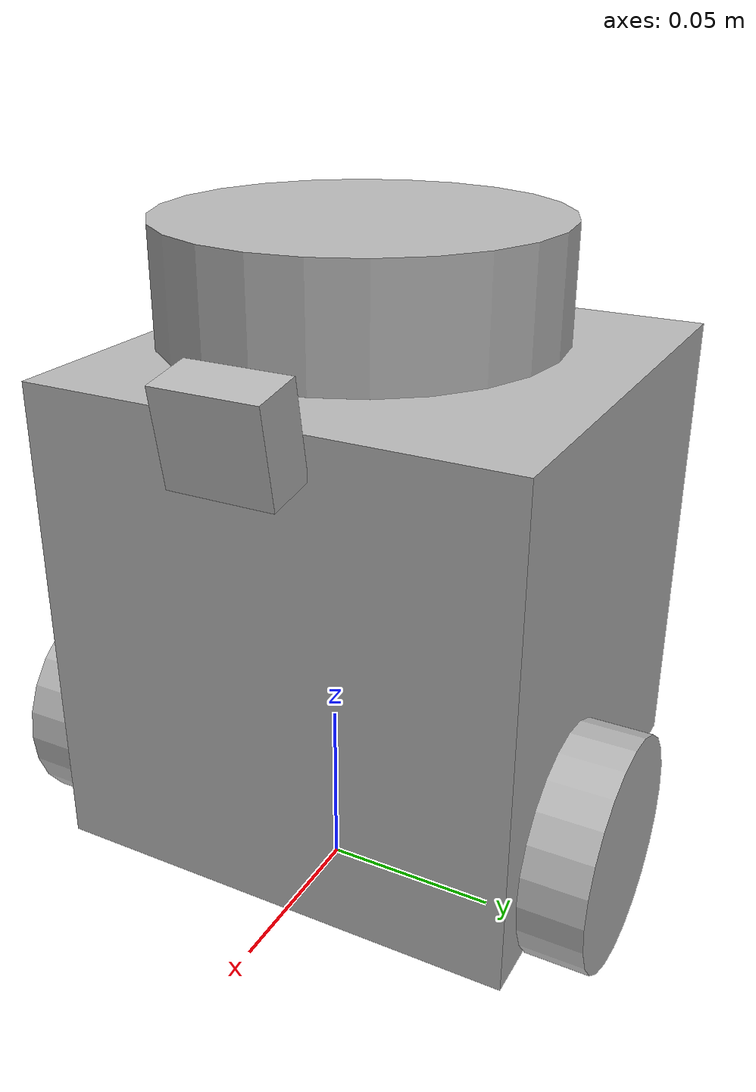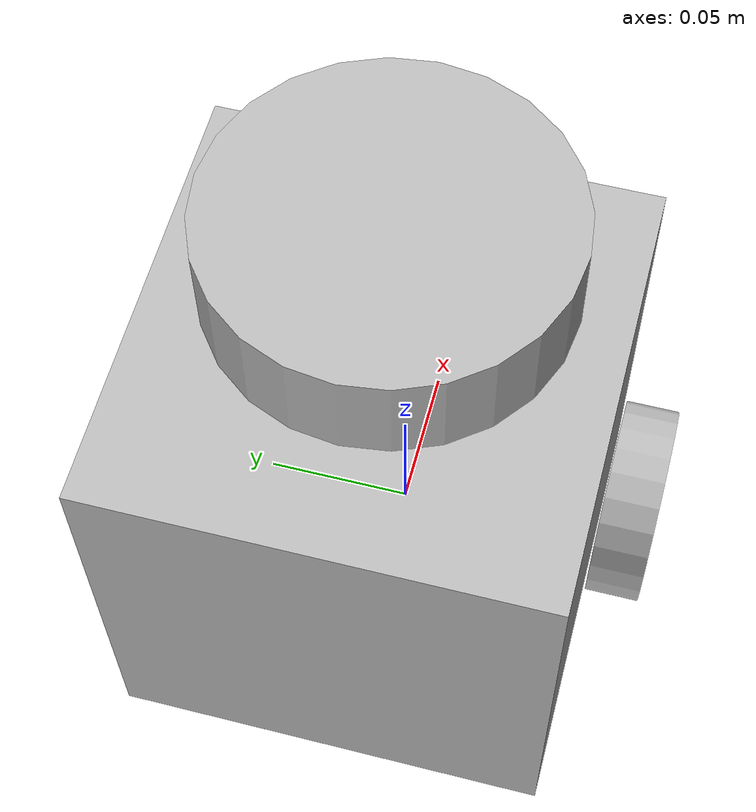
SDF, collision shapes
<sdf version='1.7'>
  <model name='turtlebot3_burger'>
    <link name='base_footprint'>
      <inertial>
        <pose>-0.00429 0 0.030734 0 -0 0</pose>
        <mass>0.944735</mass>
        <inertia>
          <ixx>0.72694</ixx>
          <ixy>4.6864e-10</ixy>
          <ixz>0.000541791</ixz>
          <iyy>0.727073</iyy>
          <iyz>2.85826e-09</iyz>
          <izz>0.655182</izz>
        </inertia>
      </inertial>
      <collision name='base_footprint_fixed_joint_lump__base_link_collision'>
        <pose>-0.032 0 0.08 0 -0 0</pose>
        <geometry>
          <box>
            <size>0.14 0.14 0.143</size>
          </box>
        </geometry>
        <surface>
          <contact>
            <ode/>
          </contact>
          <friction>
            <ode/>
          </friction>
        </surface>
      </collision>
      <collision name='base_footprint_fixed_joint_lump__camera_link_collision_1'>
        <pose>0.047175 0 0.151938 0 0.174 0</pose>
        <geometry>
          <box>
            <size>0.015 0.03 0.027</size>
          </box>
        </geometry>
        <surface>
          <contact>
            <ode/>
          </contact>
          <friction>
            <ode/>
          </friction>
        </surface>
      </collision>
      <collision name='base_footprint_fixed_joint_lump__caster_back_link_collision_2'>
        <pose>-0.081 1e-06 0.005 -1.57 0 0</pose>
        <geometry>
          <box>
            <size>0.03 0.009 0.02</size>
          </box>
        </geometry>
      </collision>
      <collision name='base_footprint_fixed_joint_lump__base_scan_collision_3'>
        <pose>-0.017 0 0.1755 0 -0 0</pose>
        <geometry>
          <cylinder>
            <length>0.0315</length>
            <radius>0.055</radius>
          </cylinder>
        </geometry>
        <surface>
          <contact>
            <ode/>
          </contact>
          <friction>
            <ode/>
          </friction>
        </surface>
      </collision>
      <visual name='base_footprint_fixed_joint_lump__base_link_visual'>
        <pose>-0.032 0 0.01 0 -0 0</pose>
        <geometry>
          <mesh>
            <scale>0.001 0.001 0.001</scale>
            <uri>model://turltebot3_burger_camera/meshes/burger_base.stl</uri>
          </mesh>
        </geometry>
      </visual>
      <visual name='base_footprint_fixed_joint_lump__base_scan_visual_1'>
        <pose>-0.032 0 0.182 0 -0 0</pose>
        <geometry>
          <mesh>
            <scale>0.001 0.001 0.001</scale>
            <uri>model://turltebot3_burger_camera/meshes/lds.stl</uri>
          </mesh>
        </geometry>
      </visual>
      <sensor name='camera' type='camera'>
        <always_on>1</always_on>
        <update_rate>30</update_rate>
        <camera name='camera'>
          <horizontal_fov>1.39626</horizontal_fov>
          <image>
            <width>640</width>
            <height>480</height>
            <format>R8G8B8</format>
          </image>
          <clip>
            <near>0.1</near>
            <far>100</far>
          </clip>
        </camera>
        <plugin name='camera_controller' filename='libgazebo_ros_camera.so'>
          <alwaysOn>1</alwaysOn>
          <updateRate>0.0</updateRate>
          <cameraName>camera</cameraName>
          <imageTopicName>image_raw</imageTopicName>
          <cameraInfoTopicName>camera_info</cameraInfoTopicName>
          <frameName>camera_link</frameName>
          <hackBaseline>0.07</hackBaseline>
        </plugin>
        <pose>0.04 -0.011 0.14 0 0.174 0</pose>
      </sensor>
      <sensor name='imu' type='imu'>
        <always_on>1</always_on>
        <update_rate>30</update_rate>
        <plugin name='turtlebot3_imu' filename='libgazebo_ros_imu_sensor.so'>
          <ros>
            <remapping>~/out:=imu</remapping>
          </ros>
        </plugin>
        <pose>-0.032 0 0.078 0 -0 0</pose>
      </sensor>
      <sensor name='hls_lfcd_lds' type='ray'>
        <always_on>1</always_on>
        <visualize>1</visualize>
        <update_rate>5</update_rate>
        <ray>
          <scan>
            <horizontal>
              <samples>360</samples>
              <resolution>1</resolution>
              <min_angle>0</min_angle>
              <max_angle>6.28</max_angle>
            </horizontal>
          </scan>
          <range>
            <min>0.12</min>
            <max>3.5</max>
            <resolution>0.015</resolution>
          </range>
          <noise>
            <type>gaussian</type>
            <mean>0</mean>
            <stddev>0.01</stddev>
          </noise>
        </ray>
        <update_rate>30</update_rate>
        <plugin name='turtlebot3_laserscan' filename='libgazebo_ros_ray_sensor.so'>
          <ros>
            <remapping>~/out:=scan</remapping>
          </ros>
          <output_type>sensor_msgs/LaserScan</output_type>
          <frame_name>base_scan</frame_name>
        </plugin>
        <pose>-0.032 0 0.182 0 -0 0</pose>
      </sensor>
      <plugin filename='libgazebo_ros_diff_drive.so' name='turtlebot3_diff_drive'>
        <ros/>
        <update_rate>30</update_rate>
        <left_joint>wheel_left_joint</left_joint>
        <right_joint>wheel_right_joint</right_joint>
        <wheel_separation>0.16</wheel_separation>
        <wheel_diameter>0.066</wheel_diameter>
        <max_wheel_torque>20</max_wheel_torque>
        <max_wheel_acceleration>1.0</max_wheel_acceleration>
        <command_topic>cmd_vel</command_topic>
        <publish_odom>1</publish_odom>
        <publish_odom_tf>1</publish_odom_tf>
        <publish_wheel_tf>0</publish_wheel_tf>
        <odometry_topic>odom</odometry_topic>
        <odometry_frame>odom</odometry_frame>
        <robot_base_frame>base_footprint</robot_base_frame>
      </plugin>
      <plugin filename='libgazebo_ros_joint_state_publisher.so' name='turtlebot3_joint_state'>
        <ros>
          <remapping>~/out:=joint_states</remapping>
        </ros>
        <update_rate>30</update_rate>
        <joint_name>wheel_left_joint</joint_name>
        <joint_name>wheel_right_joint</joint_name>
      </plugin>
    </link>
    <joint name='wheel_left_joint' type='revolute'>
      <pose relative_to='base_footprint'>0 0.08 0.033 -1.57 0 0</pose>
      <parent>base_footprint</parent>
      <child>wheel_left_link</child>
      <axis>
        <xyz>0 0 1</xyz>
        <limit>
          <lower>-1e+16</lower>
          <upper>1e+16</upper>
        </limit>
        <dynamics>
          <spring_reference>0</spring_reference>
          <spring_stiffness>0</spring_stiffness>
        </dynamics>
      </axis>
    </joint>
    <link name='wheel_left_link'>
      <pose relative_to='wheel_left_joint'>0 0 0 0 -0 0</pose>
      <inertial>
        <pose>0 0 0 0 -0 0</pose>
        <mass>0.0284989</mass>
        <inertia>
          <ixx>0.00181582</ixx>
          <ixy>-9.3392e-12</ixy>
          <ixz>1.04909e-11</ixz>
          <iyy>0.00329221</iyy>
          <iyz>5.75694e-11</iyz>
          <izz>0.00181582</izz>
        </inertia>
      </inertial>
      <collision name='wheel_left_link_collision'>
        <pose>0 0 0 0 -0 0</pose>
        <geometry>
          <cylinder>
            <length>0.018</length>
            <radius>0.033</radius>
          </cylinder>
        </geometry>
      </collision>
      <visual name='wheel_left_link_visual'>
        <pose>0 0 0 1.57 -0 0</pose>
        <geometry>
          <mesh>
            <scale>0.001 0.001 0.001</scale>
            <uri>model://turltebot3_burger_camera/meshes/left_tire.stl</uri>
          </mesh>
        </geometry>
      </visual>
    </link>
    <joint name='wheel_right_joint' type='revolute'>
      <pose relative_to='base_footprint'>0 -0.08 0.033 -1.57 0 0</pose>
      <parent>base_footprint</parent>
      <child>wheel_right_link</child>
      <axis>
        <xyz>0 0 1</xyz>
        <limit>
          <lower>-1e+16</lower>
          <upper>1e+16</upper>
        </limit>
        <dynamics>
          <spring_reference>0</spring_reference>
          <spring_stiffness>0</spring_stiffness>
        </dynamics>
      </axis>
    </joint>
    <link name='wheel_right_link'>
      <pose relative_to='wheel_right_joint'>0 0 0 0 -0 0</pose>
      <inertial>
        <pose>0 0 0 0 -0 0</pose>
        <mass>0.0284989</mass>
        <inertia>
          <ixx>0.00181582</ixx>
          <ixy>-9.3392e-12</ixy>
          <ixz>1.04909e-11</ixz>
          <iyy>0.00329221</iyy>
          <iyz>5.75694e-11</iyz>
          <izz>0.00181582</izz>
        </inertia>
      </inertial>
      <collision name='wheel_right_link_collision'>
        <pose>0 0 0 0 -0 0</pose>
        <geometry>
          <cylinder>
            <length>0.018</length>
            <radius>0.033</radius>
          </cylinder>
        </geometry>
      </collision>
      <visual name='wheel_right_link_visual'>
        <pose>0 0 0 1.57 -0 0</pose>
        <geometry>
          <mesh>
            <scale>0.001 0.001 0.001</scale>
            <uri>model://turltebot3_burger_camera/meshes/right_tire.stl</uri>
          </mesh>
        </geometry>
      </visual>
    </link>
  </model>
</sdf>
